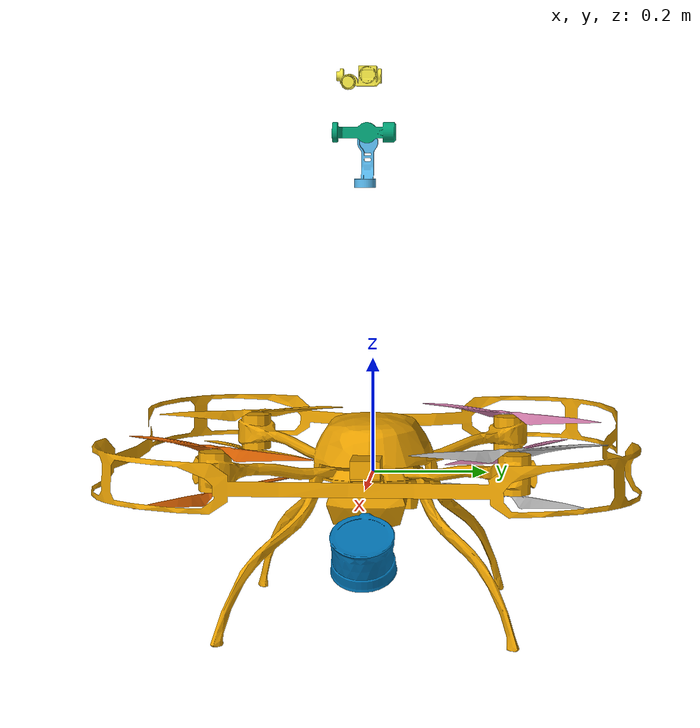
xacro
<?xml version='1.0' encoding='utf-8'?>
<robot name='emesent_hovermap_sensor_config_1' xmlns:xacro='http://ros.org/wiki/xacro'>
  <xacro:arg name="name" default="emesent_hovermap_sensor_config_1"/>
  <xacro:property name="robot_namespace" value="$(arg name)"/>
  <link name='${robot_namespace}/base_link'>
    <inertial>
      <origin xyz='-0.003069 0 -0.050337' rpy='0 -0 0'/>
      <mass value='5.281'/>
      <inertia ixx='0.105225' ixy='0' ixz='0' iyy='0.11353' iyz='0' izz='0.133861'/>
    </inertial>
    <collision name='base_link_fixed_joint_lump__body_collision'>
      <origin xyz='0.11 0 0' rpy='0 -0 1.5708'/>
      <geometry>
        <mesh filename='package://emesent_hovermap_sensor_config_1/meshes/navi-drone-hipoly-mount.dae' scale='1 1 1'/>
      </geometry>
    </collision>
    <collision name='base_link_fixed_joint_lump__body_collision_1'>
      <origin xyz='0.11 0 0' rpy='0 -0 1.5708'/>
      <geometry>
        <mesh filename='package://emesent_hovermap_sensor_config_1/meshes/navi-guard.dae' scale='1 1 1'/>
      </geometry>
    </collision>
    <collision name='base_link_fixed_joint_lump__hovermap_base_collision_2'>
      <origin xyz='0.1195 0 -0.0115' rpy='0 -0 1.5708'/>
      <geometry>
        <mesh filename='package://emesent_hovermap_sensor_config_1/meshes/ST-LIDAR-case-2.dae' scale='1 1 1'/>
      </geometry>
    </collision>
    <collision name='base_link_fixed_joint_lump__gimbal_base_collision_3'>
      <origin xyz='0.18 0 0.035' rpy='0 -0 0'/>
      <geometry>
        <box size='0.07 0.05 0.03'/>
      </geometry>
    </collision>
    <visual name='base_link_fixed_joint_lump__body_visual'>
      <origin xyz='0.11 0 0' rpy='0 -0 1.5708'/>
      <geometry>
        <mesh filename='package://emesent_hovermap_sensor_config_1/meshes/navi-drone-hipoly-mount.dae' scale='1 1 1'/>
      </geometry>
    </visual>
    <visual name='base_link_fixed_joint_lump__body_visual_1'>
      <origin xyz='0.11 0 0' rpy='0 -0 1.5708'/>
      <geometry>
        <mesh filename='package://emesent_hovermap_sensor_config_1/meshes/navi-guard.dae' scale='1 1 1'/>
      </geometry>
    </visual>
    <visual name='base_link_fixed_joint_lump__hovermap_base_visual_2'>
      <origin xyz='0.1195 0 -0.0115' rpy='0 -0 1.5708'/>
      <geometry>
        <mesh filename='package://emesent_hovermap_sensor_config_1/meshes/ST-LIDAR-case-2.dae' scale='1 1 1'/>
      </geometry>
    </visual>
    <visual name='base_link_fixed_joint_lump__gimbal_base_visual_3'>
      <origin xyz='0.18 0 0.035' rpy='0 -0 0'/>
      <geometry>
        <box size='0.07 0.05 0.03'/>
      </geometry>
    </visual>
  </link>
  <sensor name='imu' update_rate='100'>
    <parent link='${robot_namespace}/base_link'/>
    <origin xyz='0 0 0' rpy='0 -0 0'/>
  </sensor>
  <link name='${robot_namespace}/gimbal_pan'>
    <inertial>
      <origin xyz='0 0 0' rpy='0 -0 0'/>
      <mass value='0.025'/>
      <inertia ixx='0.00058083' ixy='0' ixz='0' iyy='3.0833e-05' iyz='0' izz='0.00059083'/>
    </inertial>
    <collision name='gimbal_pan_collision'>
      <origin xyz='0 0 0' rpy='0 -0 0'/>
      <geometry>
        <box size='0.001 0.001 0.001'/>
      </geometry>
    </collision>
    <visual name='gimbal_pan_visual'>
      <origin xyz='0 0 0' rpy='0 -0 0'/>
      <geometry>
        <mesh filename='package://emesent_hovermap_sensor_config_1/meshes/gimbal_pan.dae' scale='1 1 1'/>
      </geometry>
    </visual>
  </link>
  <link name='${robot_namespace}/gimbal_roll'>
    <inertial>
      <origin xyz='0 0 0' rpy='0 -0 0'/>
      <mass value='0.025'/>
      <inertia ixx='0.00058083' ixy='0' ixz='0' iyy='3.0833e-05' iyz='0' izz='0.00059083'/>
    </inertial>
    <collision name='gimbal_roll_collision'>
      <origin xyz='0 0 0' rpy='0 -0 0'/>
      <geometry>
        <box size='0.001 0.001 0.001'/>
      </geometry>
    </collision>
    <visual name='gimbal_roll_visual'>
      <origin xyz='0 0 0' rpy='0 -0 0'/>
      <geometry>
        <mesh filename='package://emesent_hovermap_sensor_config_1/meshes/gimbal_roll.dae' scale='1 1 1'/>
      </geometry>
    </visual>
  </link>
  <link name='${robot_namespace}/gimbal_tilt'>
    <inertial>
      <origin xyz='-2.4e-05 0.002445 -2e-05' rpy='0 -0 0'/>
      <mass value='0.0501'/>
      <inertia ixx='0.00216206' ixy='0' ixz='0' iyy='0.00106169' iyz='0' izz='0.00218206'/>
    </inertial>
    <collision name='gimbal_tilt_collision'>
      <origin xyz='0 0 0' rpy='0 -0 0'/>
      <geometry>
        <box size='0.001 0.001 0.001'/>
      </geometry>
    </collision>
    <visual name='gimbal_tilt_visual'>
      <origin xyz='0 0 0' rpy='0 -0 0'/>
      <geometry>
        <mesh filename='package://emesent_hovermap_sensor_config_1/meshes/gimbal_tilt.dae' scale='1 1 1'/>
      </geometry>
    </visual>
    <visual name='gimbal_tilt_fixed_joint_lump__gimbal_flashlight_visual_2'>
      <origin xyz='-0.012 -0.025 -0.01' rpy='0 0 -1.57'/>
      <geometry>
        <mesh filename='package://emesent_hovermap_sensor_config_1/meshes/spotlight.dae' scale='0.005 0.005 0.005'/>
      </geometry>
    </visual>
  </link>
  <sensor name='gimbal_camera' update_rate='10'>
    <parent link='${robot_namespace}/gimbal_tilt'/>
    <origin xyz='0 0.005 0' rpy='0 -0 0'/>
    <camera>
      <image width='300' height='300' hfov='1.287' near='0.02' far='300' />
    </camera>
  </sensor>
  <link name='${robot_namespace}/encoder_rotating'>
    <inertial>
      <origin xyz='0 0 -0.000891' rpy='-3.14159 0 0'/>
      <mass value='0.101'/>
      <inertia ixx='2.46865e-05' ixy='0' ixz='0' iyy='2.46865e-05' iyz='-1.65708e-18' izz='1.66667e-05'/>
    </inertial>
    <collision name='encoder_rotating_collision'>
      <origin xyz='0 0 -0.0125' rpy='-3.14159 -0 1.5708'/>
      <geometry>
        <mesh filename='package://emesent_hovermap_sensor_config_1/meshes/ST-LIDAR-hipoly.dae' scale='1 1 1'/>
      </geometry>
    </collision>
    <visual name='encoder_rotating_visual'>
      <origin xyz='0 0 -0.0125' rpy='-3.14159 -0 1.5708'/>
      <geometry>
        <mesh filename='package://emesent_hovermap_sensor_config_1/meshes/ST-LIDAR-hipoly.dae' scale='1 1 1'/>
      </geometry>
    </visual>
  </link>
  <sensor name='gpu_lidar' update_rate='20'>
    <parent link='${robot_namespace}/encoder_rotating'/>
    <origin xyz='0 0 0' rpy='0 -0 0'/>
  </sensor>
  <link name='${robot_namespace}/rotor_0'>
    <inertial>
      <origin xyz='0 0 0' rpy='0 -0 1.5708'/>
      <mass value='0.02'/>
      <inertia ixx='2.32667e-06' ixy='0' ixz='0' iyy='6.03333e-05' iyz='0' izz='6.23266e-05'/>
    </inertial>
    <collision name='rotor_0_collision_collision'>
      <origin xyz='0 0 0.04' rpy='0 -0 1.01342'/>
      <geometry>
        <box size='0.38 0.036 0.01'/>
      </geometry>
    </collision>
    <collision name='rotor_0_collision_collision_1'>
      <origin xyz='0 0 -0.0375' rpy='0 0 -0.604152'/>
      <geometry>
        <box size='0.35492 0.036 0.01'/>
      </geometry>
    </collision>
    <visual name='rotor_0_visual_visual'>
      <origin xyz='0 0 0' rpy='0 -0 0'/>
      <geometry>
        <mesh filename='package://emesent_hovermap_sensor_config_1/meshes/navi-15in-CW-tex.dae' scale='1 1 1'/>
      </geometry>
    </visual>
    <visual name='rotor_0_visual_visual_1'>
      <origin xyz='0 0 0' rpy='0 -0 0'/>
      <geometry>
        <mesh filename='package://emesent_hovermap_sensor_config_1/meshes/navi-14in-CW-tex.dae' scale='1 1 1'/>
      </geometry>
    </visual>
  </link>
  <link name='${robot_namespace}/rotor_1'>
    <inertial>
      <origin xyz='0 0 0' rpy='0 -0 1.5708'/>
      <mass value='0.02'/>
      <inertia ixx='2.32667e-06' ixy='0' ixz='0' iyy='6.03333e-05' iyz='0' izz='6.23266e-05'/>
    </inertial>
    <collision name='rotor_1_collision_collision'>
      <origin xyz='0 0 0.04' rpy='0 -0 1.01342'/>
      <geometry>
        <box size='0.38 0.036 0.01'/>
      </geometry>
    </collision>
    <collision name='rotor_1_collision_collision_1'>
      <origin xyz='0 0 -0.0375' rpy='0 0 -0.604152'/>
      <geometry>
        <box size='0.35492 0.036 0.01'/>
      </geometry>
    </collision>
    <visual name='rotor_1_visual_visual'>
      <origin xyz='0 0 0' rpy='0 -0 0'/>
      <geometry>
        <mesh filename='package://emesent_hovermap_sensor_config_1/meshes/navi-15in-CW-tex.dae' scale='1 1 1'/>
      </geometry>
    </visual>
    <visual name='rotor_1_visual_visual_1'>
      <origin xyz='0 0 0' rpy='0 -0 0'/>
      <geometry>
        <mesh filename='package://emesent_hovermap_sensor_config_1/meshes/navi-14in-CW-tex.dae' scale='1 1 1'/>
      </geometry>
    </visual>
  </link>
  <link name='${robot_namespace}/rotor_2'>
    <inertial>
      <origin xyz='0 0 0' rpy='0 -0 1.5708'/>
      <mass value='0.02'/>
      <inertia ixx='2.32667e-06' ixy='0' ixz='0' iyy='6.03333e-05' iyz='0' izz='6.23266e-05'/>
    </inertial>
    <collision name='rotor_2_collision_collision'>
      <origin xyz='0 0 0.04' rpy='0 0 -1.01342'/>
      <geometry>
        <box size='0.38 0.036 0.01'/>
      </geometry>
    </collision>
    <collision name='rotor_2_collision_collision_1'>
      <origin xyz='0 0 -0.0375' rpy='0 -0 0.604152'/>
      <geometry>
        <box size='0.35492 0.036 0.01'/>
      </geometry>
    </collision>
    <visual name='rotor_2_visual_visual'>
      <origin xyz='0 0 0' rpy='0 -0 0'/>
      <geometry>
        <mesh filename='package://emesent_hovermap_sensor_config_1/meshes/navi-15in-CCW-tex.dae' scale='1 1 1'/>
      </geometry>
    </visual>
    <visual name='rotor_2_visual_visual_1'>
      <origin xyz='0 0 0' rpy='0 -0 0'/>
      <geometry>
        <mesh filename='package://emesent_hovermap_sensor_config_1/meshes/navi-14in-CCW-tex.dae' scale='1 1 1'/>
      </geometry>
    </visual>
  </link>
  <link name='${robot_namespace}/rotor_3'>
    <inertial>
      <origin xyz='0 0 0' rpy='0 -0 1.5708'/>
      <mass value='0.02'/>
      <inertia ixx='2.32667e-06' ixy='0' ixz='0' iyy='6.03333e-05' iyz='0' izz='6.23266e-05'/>
    </inertial>
    <collision name='rotor_3_collision_collision'>
      <origin xyz='0 0 0.04' rpy='0 0 -1.01342'/>
      <geometry>
        <box size='0.38 0.036 0.01'/>
      </geometry>
    </collision>
    <collision name='rotor_3_collision_collision_1'>
      <origin xyz='0 0 -0.0375' rpy='0 -0 0.604152'/>
      <geometry>
        <box size='0.35492 0.036 0.01'/>
      </geometry>
    </collision>
    <visual name='rotor_3_visual_visual'>
      <origin xyz='0 0 0' rpy='0 -0 0'/>
      <geometry>
        <mesh filename='package://emesent_hovermap_sensor_config_1/meshes/navi-15in-CCW-tex.dae' scale='1 1 1'/>
      </geometry>
    </visual>
    <visual name='rotor_3_visual_visual_1'>
      <origin xyz='0 0 0' rpy='0 -0 0'/>
      <geometry>
        <mesh filename='package://emesent_hovermap_sensor_config_1/meshes/navi-14in-CCW-tex.dae' scale='1 1 1'/>
      </geometry>
    </visual>
  </link>
  <joint name='gimbal_pan_joint' type='revolute'>
    <origin xyz='0.2 0 0.5' rpy='0 -0 0'/>
    <parent link='${robot_namespace}/base_link'/>
    <child link='${robot_namespace}/gimbal_pan'/>
    <dynamics damping='0' friction='0' />
    <axis xyz='0 0 1'/>
    <limit lower='-1.5708' upper='1.5708' effort='10' velocity='20'/>
  </joint>
  <joint name='gimbal_roll_joint' type='revolute'>
    <origin xyz='0 0 0.09' rpy='0 -0 0'/>
    <parent link='${robot_namespace}/gimbal_pan'/>
    <child link='${robot_namespace}/gimbal_roll'/>
    <dynamics damping='0' friction='0' />
    <axis xyz='1 0 0'/>
    <limit lower='-0.785398' upper='0.785398' effort='10' velocity='20'/>
  </joint>
  <joint name='gimbal_tilt_joint' type='revolute'>
    <origin xyz='0.018 0 0.09' rpy='0 -0 0'/>
    <parent link='${robot_namespace}/gimbal_roll'/>
    <child link='${robot_namespace}/gimbal_tilt'/>
    <dynamics damping='0' friction='0' />
    <axis xyz='0 1 0'/>
    <limit lower='-0.785398' upper='0.785398' effort='10' velocity='20'/>
  </joint>
  <joint name='encoder_joint' type='revolute'>
    <origin xyz='0.1745 0 -0.0525' rpy='0 -1.0472 0'/>
    <parent link='${robot_namespace}/base_link'/>
    <child link='${robot_namespace}/encoder_rotating'/>
    <dynamics damping='0' friction='0' />
    <axis xyz='0 0 1'/>
    <limit lower='-1e+16' upper='1e+16' effort='-1' velocity='-1'/>
  </joint>
  <joint name='rotor_0_joint' type='revolute'>
    <origin xyz='0.24 -0.24 0.035' rpy='0 -0 0'/>
    <parent link='${robot_namespace}/base_link'/>
    <child link='${robot_namespace}/rotor_0'/>
    <dynamics damping='0' friction='0' />
    <axis xyz='0 0 1'/>
    <limit lower='-1e+16' upper='1e+16' effort='-1' velocity='-1'/>
  </joint>
  <joint name='rotor_1_joint' type='revolute'>
    <origin xyz='-0.24 0.24 0.035' rpy='0 -0 0'/>
    <parent link='${robot_namespace}/base_link'/>
    <child link='${robot_namespace}/rotor_1'/>
    <dynamics damping='0' friction='0' />
    <axis xyz='0 0 1'/>
    <limit lower='-1e+16' upper='1e+16' effort='-1' velocity='-1'/>
  </joint>
  <joint name='rotor_2_joint' type='revolute'>
    <origin xyz='0.24 0.24 0.035' rpy='0 -0 0'/>
    <parent link='${robot_namespace}/base_link'/>
    <child link='${robot_namespace}/rotor_2'/>
    <dynamics damping='0' friction='0' />
    <axis xyz='0 0 1'/>
    <limit lower='-1e+16' upper='1e+16' effort='-1' velocity='-1'/>
  </joint>
  <joint name='rotor_3_joint' type='revolute'>
    <origin xyz='-0.24 -0.24 0.035' rpy='0 -0 0'/>
    <parent link='${robot_namespace}/base_link'/>
    <child link='${robot_namespace}/rotor_3'/>
    <dynamics damping='0' friction='0' />
    <axis xyz='0 0 1'/>
    <limit lower='-1e+16' upper='1e+16' effort='-1' velocity='-1'/>
  </joint>
</robot>
